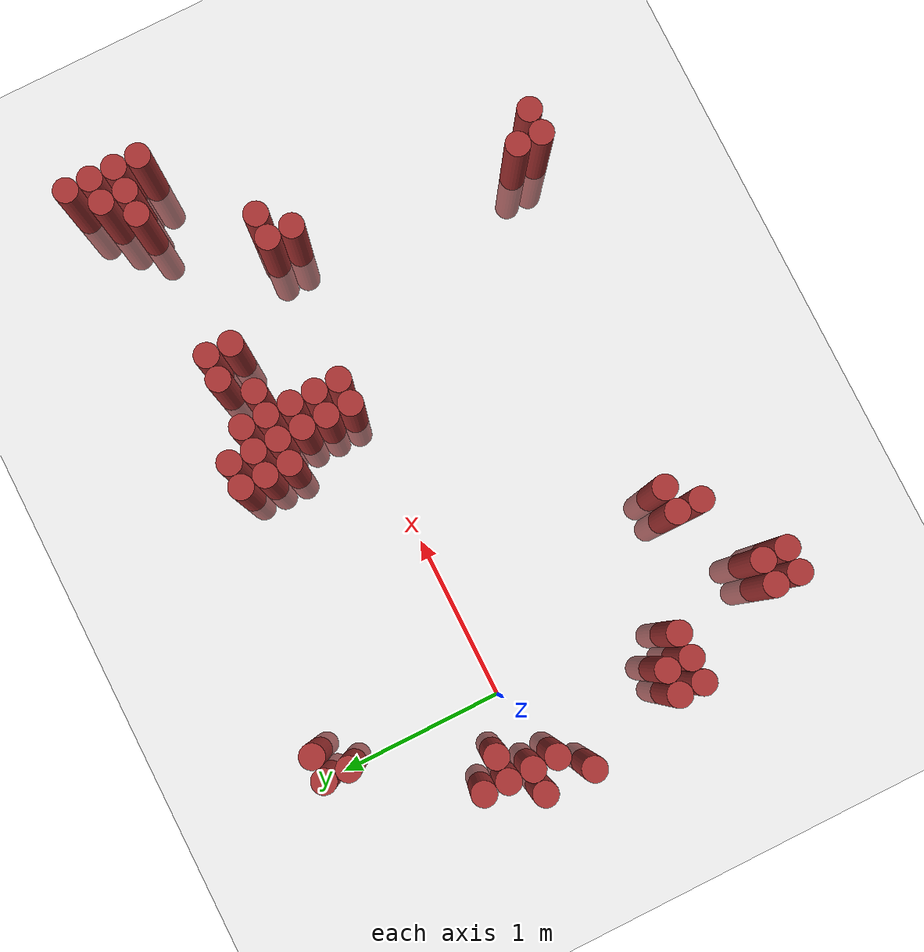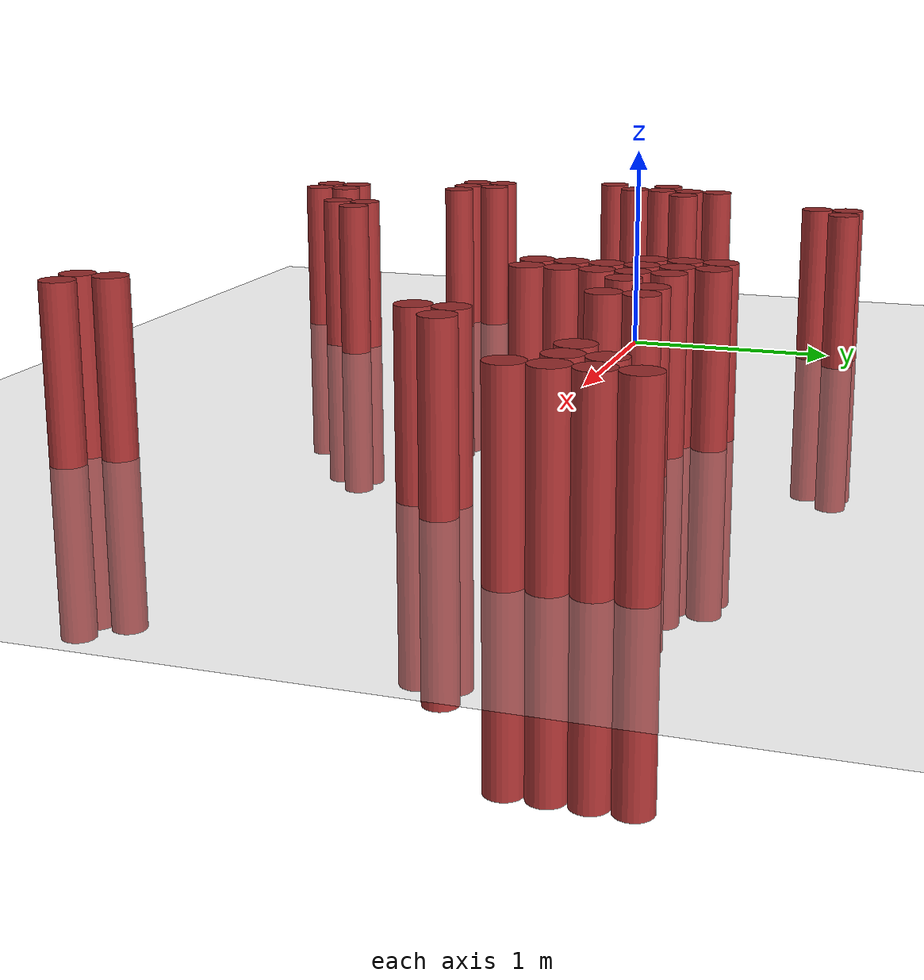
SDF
<sdf version="1.6">
 <world name="default">
  <model name="ground_plane">
   <static>1</static>
   <link name="link">
    <collision name="collision">
     <geometry><plane><normal>0 0 1</normal><size>100 100</size></plane></geometry>
     <surface><friction><ode><mu>100</mu><mu2>50</mu2></ode></friction></surface>
    </collision>
    <visual name="visual">
     <cast_shadows>0</cast_shadows>
     <geometry><plane><normal>0 0 1</normal><size>100 100</size></plane></geometry>
     <material>
      <script><uri>file://media/materials/scripts/gazebo.material</uri><name>Gazebo/Grey</name></script>
     </material>
    </visual>
   </link>
  </model>
  <model name="unit_cylinder_432">
   <static>1</static>
   <pose>-0.575000 -0.275000 0.000000 0.000000 0.000000 0.000000</pose>
   <link name="link">
    <inertial>
     <mass>1</mass>
     <inertia><ixx>0.145833</ixx><ixy>0</ixy><ixz>0</ixz><iyy>0.145833</iyy><iyz>0</iyz><izz>0.125</izz></inertia>
    </inertial>
    <collision name="collision">
     <geometry><cylinder><radius>0.075000</radius><length>1.5</length></cylinder></geometry>
    </collision>
    <visual name="visual">
     <geometry><cylinder><radius>0.075000</radius><length>1.5</length></cylinder></geometry>
     <material>
      <ambient>0.648000 0.192000 0.192000 1</ambient>
      <diffuse>0.648000 0.192000 0.192000 1</diffuse>
     </material>
     <material>
      <script><name>Gazebo/Grey</name><uri>file://media/materials/scripts/gazebo.material</uri></script>
     </material>
    </visual>
   </link>
  </model>
  <model name="unit_cylinder_433">
   <static>1</static>
   <pose>-0.575000 0.025000 0.000000 0.000000 0.000000 0.000000</pose>
   <link name="link">
    <inertial>
     <mass>1</mass>
     <inertia><ixx>0.145833</ixx><ixy>0</ixy><ixz>0</ixz><iyy>0.145833</iyy><iyz>0</iyz><izz>0.125</izz></inertia>
    </inertial>
    <collision name="collision">
     <geometry><cylinder><radius>0.075000</radius><length>1.5</length></cylinder></geometry>
    </collision>
    <visual name="visual">
     <geometry><cylinder><radius>0.075000</radius><length>1.5</length></cylinder></geometry>
     <material>
      <ambient>0.648000 0.192000 0.192000 1</ambient>
      <diffuse>0.648000 0.192000 0.192000 1</diffuse>
     </material>
     <material>
      <script><name>Gazebo/Grey</name><uri>file://media/materials/scripts/gazebo.material</uri></script>
     </material>
    </visual>
   </link>
  </model>
  <model name="unit_cylinder_440">
   <static>1</static>
   <pose>-0.425000 -1.025000 0.000000 0.000000 0.000000 0.000000</pose>
   <link name="link">
    <inertial>
     <mass>1</mass>
     <inertia><ixx>0.145833</ixx><ixy>0</ixy><ixz>0</ixz><iyy>0.145833</iyy><iyz>0</iyz><izz>0.125</izz></inertia>
    </inertial>
    <collision name="collision">
     <geometry><cylinder><radius>0.075000</radius><length>1.5</length></cylinder></geometry>
    </collision>
    <visual name="visual">
     <geometry><cylinder><radius>0.075000</radius><length>1.5</length></cylinder></geometry>
     <material>
      <ambient>0.648000 0.192000 0.192000 1</ambient>
      <diffuse>0.648000 0.192000 0.192000 1</diffuse>
     </material>
     <material>
      <script><name>Gazebo/Grey</name><uri>file://media/materials/scripts/gazebo.material</uri></script>
     </material>
    </visual>
   </link>
  </model>
  <model name="unit_cylinder_441">
   <static>1</static>
   <pose>-0.425000 -0.875000 0.000000 0.000000 0.000000 0.000000</pose>
   <link name="link">
    <inertial>
     <mass>1</mass>
     <inertia><ixx>0.145833</ixx><ixy>0</ixy><ixz>0</ixz><iyy>0.145833</iyy><iyz>0</iyz><izz>0.125</izz></inertia>
    </inertial>
    <collision name="collision">
     <geometry><cylinder><radius>0.075000</radius><length>1.5</length></cylinder></geometry>
    </collision>
    <visual name="visual">
     <geometry><cylinder><radius>0.075000</radius><length>1.5</length></cylinder></geometry>
     <material>
      <ambient>0.648000 0.192000 0.192000 1</ambient>
      <diffuse>0.648000 0.192000 0.192000 1</diffuse>
     </material>
     <material>
      <script><name>Gazebo/Grey</name><uri>file://media/materials/scripts/gazebo.material</uri></script>
     </material>
    </visual>
   </link>
  </model>
  <model name="unit_cylinder_442">
   <static>1</static>
   <pose>-0.425000 -0.125000 0.000000 0.000000 0.000000 0.000000</pose>
   <link name="link">
    <inertial>
     <mass>1</mass>
     <inertia><ixx>0.145833</ixx><ixy>0</ixy><ixz>0</ixz><iyy>0.145833</iyy><iyz>0</iyz><izz>0.125</izz></inertia>
    </inertial>
    <collision name="collision">
     <geometry><cylinder><radius>0.075000</radius><length>1.5</length></cylinder></geometry>
    </collision>
    <visual name="visual">
     <geometry><cylinder><radius>0.075000</radius><length>1.5</length></cylinder></geometry>
     <material>
      <ambient>0.648000 0.192000 0.192000 1</ambient>
      <diffuse>0.648000 0.192000 0.192000 1</diffuse>
     </material>
     <material>
      <script><name>Gazebo/Grey</name><uri>file://media/materials/scripts/gazebo.material</uri></script>
     </material>
    </visual>
   </link>
  </model>
  <model name="unit_cylinder_443">
   <static>1</static>
   <pose>-0.425000 0.025000 0.000000 0.000000 0.000000 0.000000</pose>
   <link name="link">
    <inertial>
     <mass>1</mass>
     <inertia><ixx>0.145833</ixx><ixy>0</ixy><ixz>0</ixz><iyy>0.145833</iyy><iyz>0</iyz><izz>0.125</izz></inertia>
    </inertial>
    <collision name="collision">
     <geometry><cylinder><radius>0.075000</radius><length>1.5</length></cylinder></geometry>
    </collision>
    <visual name="visual">
     <geometry><cylinder><radius>0.075000</radius><length>1.5</length></cylinder></geometry>
     <material>
      <ambient>0.648000 0.192000 0.192000 1</ambient>
      <diffuse>0.648000 0.192000 0.192000 1</diffuse>
     </material>
     <material>
      <script><name>Gazebo/Grey</name><uri>file://media/materials/scripts/gazebo.material</uri></script>
     </material>
    </visual>
   </link>
  </model>
  <model name="unit_cylinder_444">
   <static>1</static>
   <pose>-0.425000 0.175000 0.000000 0.000000 0.000000 0.000000</pose>
   <link name="link">
    <inertial>
     <mass>1</mass>
     <inertia><ixx>0.145833</ixx><ixy>0</ixy><ixz>0</ixz><iyy>0.145833</iyy><iyz>0</iyz><izz>0.125</izz></inertia>
    </inertial>
    <collision name="collision">
     <geometry><cylinder><radius>0.075000</radius><length>1.5</length></cylinder></geometry>
    </collision>
    <visual name="visual">
     <geometry><cylinder><radius>0.075000</radius><length>1.5</length></cylinder></geometry>
     <material>
      <ambient>0.648000 0.192000 0.192000 1</ambient>
      <diffuse>0.648000 0.192000 0.192000 1</diffuse>
     </material>
     <material>
      <script><name>Gazebo/Grey</name><uri>file://media/materials/scripts/gazebo.material</uri></script>
     </material>
    </visual>
   </link>
  </model>
  <model name="unit_cylinder_445">
   <static>1</static>
   <pose>-0.425000 0.325000 0.000000 0.000000 0.000000 0.000000</pose>
   <link name="link">
    <inertial>
     <mass>1</mass>
     <inertia><ixx>0.145833</ixx><ixy>0</ixy><ixz>0</ixz><iyy>0.145833</iyy><iyz>0</iyz><izz>0.125</izz></inertia>
    </inertial>
    <collision name="collision">
     <geometry><cylinder><radius>0.075000</radius><length>1.5</length></cylinder></geometry>
    </collision>
    <visual name="visual">
     <geometry><cylinder><radius>0.075000</radius><length>1.5</length></cylinder></geometry>
     <material>
      <ambient>0.648000 0.192000 0.192000 1</ambient>
      <diffuse>0.648000 0.192000 0.192000 1</diffuse>
     </material>
     <material>
      <script><name>Gazebo/Grey</name><uri>file://media/materials/scripts/gazebo.material</uri></script>
     </material>
    </visual>
   </link>
  </model>
  <model name="unit_cylinder_457">
   <static>1</static>
   <pose>-0.275000 -1.025000 0.000000 0.000000 0.000000 0.000000</pose>
   <link name="link">
    <inertial>
     <mass>1</mass>
     <inertia><ixx>0.145833</ixx><ixy>0</ixy><ixz>0</ixz><iyy>0.145833</iyy><iyz>0</iyz><izz>0.125</izz></inertia>
    </inertial>
    <collision name="collision">
     <geometry><cylinder><radius>0.075000</radius><length>1.5</length></cylinder></geometry>
    </collision>
    <visual name="visual">
     <geometry><cylinder><radius>0.075000</radius><length>1.5</length></cylinder></geometry>
     <material>
      <ambient>0.648000 0.192000 0.192000 1</ambient>
      <diffuse>0.648000 0.192000 0.192000 1</diffuse>
     </material>
     <material>
      <script><name>Gazebo/Grey</name><uri>file://media/materials/scripts/gazebo.material</uri></script>
     </material>
    </visual>
   </link>
  </model>
  <model name="unit_cylinder_458">
   <static>1</static>
   <pose>-0.275000 -0.875000 0.000000 0.000000 0.000000 0.000000</pose>
   <link name="link">
    <inertial>
     <mass>1</mass>
     <inertia><ixx>0.145833</ixx><ixy>0</ixy><ixz>0</ixz><iyy>0.145833</iyy><iyz>0</iyz><izz>0.125</izz></inertia>
    </inertial>
    <collision name="collision">
     <geometry><cylinder><radius>0.075000</radius><length>1.5</length></cylinder></geometry>
    </collision>
    <visual name="visual">
     <geometry><cylinder><radius>0.075000</radius><length>1.5</length></cylinder></geometry>
     <material>
      <ambient>0.648000 0.192000 0.192000 1</ambient>
      <diffuse>0.648000 0.192000 0.192000 1</diffuse>
     </material>
     <material>
      <script><name>Gazebo/Grey</name><uri>file://media/materials/scripts/gazebo.material</uri></script>
     </material>
    </visual>
   </link>
  </model>
  <model name="unit_cylinder_459">
   <static>1</static>
   <pose>-0.275000 0.175000 0.000000 0.000000 0.000000 0.000000</pose>
   <link name="link">
    <inertial>
     <mass>1</mass>
     <inertia><ixx>0.145833</ixx><ixy>0</ixy><ixz>0</ixz><iyy>0.145833</iyy><iyz>0</iyz><izz>0.125</izz></inertia>
    </inertial>
    <collision name="collision">
     <geometry><cylinder><radius>0.075000</radius><length>1.5</length></cylinder></geometry>
    </collision>
    <visual name="visual">
     <geometry><cylinder><radius>0.075000</radius><length>1.5</length></cylinder></geometry>
     <material>
      <ambient>0.648000 0.192000 0.192000 1</ambient>
      <diffuse>0.648000 0.192000 0.192000 1</diffuse>
     </material>
     <material>
      <script><name>Gazebo/Grey</name><uri>file://media/materials/scripts/gazebo.material</uri></script>
     </material>
    </visual>
   </link>
  </model>
  <model name="unit_cylinder_474">
   <static>1</static>
   <pose>-0.125000 -1.775000 0.000000 0.000000 0.000000 0.000000</pose>
   <link name="link">
    <inertial>
     <mass>1</mass>
     <inertia><ixx>0.145833</ixx><ixy>0</ixy><ixz>0</ixz><iyy>0.145833</iyy><iyz>0</iyz><izz>0.125</izz></inertia>
    </inertial>
    <collision name="collision">
     <geometry><cylinder><radius>0.075000</radius><length>1.5</length></cylinder></geometry>
    </collision>
    <visual name="visual">
     <geometry><cylinder><radius>0.075000</radius><length>1.5</length></cylinder></geometry>
     <material>
      <ambient>0.648000 0.192000 0.192000 1</ambient>
      <diffuse>0.648000 0.192000 0.192000 1</diffuse>
     </material>
     <material>
      <script><name>Gazebo/Grey</name><uri>file://media/materials/scripts/gazebo.material</uri></script>
     </material>
    </visual>
   </link>
  </model>
  <model name="unit_cylinder_475">
   <static>1</static>
   <pose>-0.125000 -1.625000 0.000000 0.000000 0.000000 0.000000</pose>
   <link name="link">
    <inertial>
     <mass>1</mass>
     <inertia><ixx>0.145833</ixx><ixy>0</ixy><ixz>0</ixz><iyy>0.145833</iyy><iyz>0</iyz><izz>0.125</izz></inertia>
    </inertial>
    <collision name="collision">
     <geometry><cylinder><radius>0.075000</radius><length>1.5</length></cylinder></geometry>
    </collision>
    <visual name="visual">
     <geometry><cylinder><radius>0.075000</radius><length>1.5</length></cylinder></geometry>
     <material>
      <ambient>0.648000 0.192000 0.192000 1</ambient>
      <diffuse>0.648000 0.192000 0.192000 1</diffuse>
     </material>
     <material>
      <script><name>Gazebo/Grey</name><uri>file://media/materials/scripts/gazebo.material</uri></script>
     </material>
    </visual>
   </link>
  </model>
  <model name="unit_cylinder_476">
   <static>1</static>
   <pose>-0.125000 -1.025000 0.000000 0.000000 0.000000 0.000000</pose>
   <link name="link">
    <inertial>
     <mass>1</mass>
     <inertia><ixx>0.145833</ixx><ixy>0</ixy><ixz>0</ixz><iyy>0.145833</iyy><iyz>0</iyz><izz>0.125</izz></inertia>
    </inertial>
    <collision name="collision">
     <geometry><cylinder><radius>0.075000</radius><length>1.5</length></cylinder></geometry>
    </collision>
    <visual name="visual">
     <geometry><cylinder><radius>0.075000</radius><length>1.5</length></cylinder></geometry>
     <material>
      <ambient>0.648000 0.192000 0.192000 1</ambient>
      <diffuse>0.648000 0.192000 0.192000 1</diffuse>
     </material>
     <material>
      <script><name>Gazebo/Grey</name><uri>file://media/materials/scripts/gazebo.material</uri></script>
     </material>
    </visual>
   </link>
  </model>
  <model name="unit_cylinder_482">
   <static>1</static>
   <pose>0.025000 -1.775000 0.000000 0.000000 0.000000 0.000000</pose>
   <link name="link">
    <inertial>
     <mass>1</mass>
     <inertia><ixx>0.145833</ixx><ixy>0</ixy><ixz>0</ixz><iyy>0.145833</iyy><iyz>0</iyz><izz>0.125</izz></inertia>
    </inertial>
    <collision name="collision">
     <geometry><cylinder><radius>0.075000</radius><length>1.5</length></cylinder></geometry>
    </collision>
    <visual name="visual">
     <geometry><cylinder><radius>0.075000</radius><length>1.5</length></cylinder></geometry>
     <material>
      <ambient>0.648000 0.192000 0.192000 1</ambient>
      <diffuse>0.648000 0.192000 0.192000 1</diffuse>
     </material>
     <material>
      <script><name>Gazebo/Grey</name><uri>file://media/materials/scripts/gazebo.material</uri></script>
     </material>
    </visual>
   </link>
  </model>
  <model name="unit_cylinder_483">
   <static>1</static>
   <pose>0.025000 -1.625000 0.000000 0.000000 0.000000 0.000000</pose>
   <link name="link">
    <inertial>
     <mass>1</mass>
     <inertia><ixx>0.145833</ixx><ixy>0</ixy><ixz>0</ixz><iyy>0.145833</iyy><iyz>0</iyz><izz>0.125</izz></inertia>
    </inertial>
    <collision name="collision">
     <geometry><cylinder><radius>0.075000</radius><length>1.5</length></cylinder></geometry>
    </collision>
    <visual name="visual">
     <geometry><cylinder><radius>0.075000</radius><length>1.5</length></cylinder></geometry>
     <material>
      <ambient>0.648000 0.192000 0.192000 1</ambient>
      <diffuse>0.648000 0.192000 0.192000 1</diffuse>
     </material>
     <material>
      <script><name>Gazebo/Grey</name><uri>file://media/materials/scripts/gazebo.material</uri></script>
     </material>
    </visual>
   </link>
  </model>
  <model name="unit_cylinder_484">
   <static>1</static>
   <pose>0.025000 0.925000 0.000000 0.000000 0.000000 0.000000</pose>
   <link name="link">
    <inertial>
     <mass>1</mass>
     <inertia><ixx>0.145833</ixx><ixy>0</ixy><ixz>0</ixz><iyy>0.145833</iyy><iyz>0</iyz><izz>0.125</izz></inertia>
    </inertial>
    <collision name="collision">
     <geometry><cylinder><radius>0.075000</radius><length>1.5</length></cylinder></geometry>
    </collision>
    <visual name="visual">
     <geometry><cylinder><radius>0.075000</radius><length>1.5</length></cylinder></geometry>
     <material>
      <ambient>0.648000 0.192000 0.192000 1</ambient>
      <diffuse>0.648000 0.192000 0.192000 1</diffuse>
     </material>
     <material>
      <script><name>Gazebo/Grey</name><uri>file://media/materials/scripts/gazebo.material</uri></script>
     </material>
    </visual>
   </link>
  </model>
  <model name="unit_cylinder_485">
   <static>1</static>
   <pose>0.025000 1.075000 0.000000 0.000000 0.000000 0.000000</pose>
   <link name="link">
    <inertial>
     <mass>1</mass>
     <inertia><ixx>0.145833</ixx><ixy>0</ixy><ixz>0</ixz><iyy>0.145833</iyy><iyz>0</iyz><izz>0.125</izz></inertia>
    </inertial>
    <collision name="collision">
     <geometry><cylinder><radius>0.075000</radius><length>1.5</length></cylinder></geometry>
    </collision>
    <visual name="visual">
     <geometry><cylinder><radius>0.075000</radius><length>1.5</length></cylinder></geometry>
     <material>
      <ambient>0.648000 0.192000 0.192000 1</ambient>
      <diffuse>0.648000 0.192000 0.192000 1</diffuse>
     </material>
     <material>
      <script><name>Gazebo/Grey</name><uri>file://media/materials/scripts/gazebo.material</uri></script>
     </material>
    </visual>
   </link>
  </model>
  <model name="unit_cylinder_492">
   <static>1</static>
   <pose>0.175000 1.075000 0.000000 0.000000 0.000000 0.000000</pose>
   <link name="link">
    <inertial>
     <mass>1</mass>
     <inertia><ixx>0.145833</ixx><ixy>0</ixy><ixz>0</ixz><iyy>0.145833</iyy><iyz>0</iyz><izz>0.125</izz></inertia>
    </inertial>
    <collision name="collision">
     <geometry><cylinder><radius>0.075000</radius><length>1.5</length></cylinder></geometry>
    </collision>
    <visual name="visual">
     <geometry><cylinder><radius>0.075000</radius><length>1.5</length></cylinder></geometry>
     <material>
      <ambient>0.648000 0.192000 0.192000 1</ambient>
      <diffuse>0.648000 0.192000 0.192000 1</diffuse>
     </material>
     <material>
      <script><name>Gazebo/Grey</name><uri>file://media/materials/scripts/gazebo.material</uri></script>
     </material>
    </visual>
   </link>
  </model>
  <model name="unit_cylinder_511">
   <static>1</static>
   <pose>0.475000 -1.475000 0.000000 0.000000 0.000000 0.000000</pose>
   <link name="link">
    <inertial>
     <mass>1</mass>
     <inertia><ixx>0.145833</ixx><ixy>0</ixy><ixz>0</ixz><iyy>0.145833</iyy><iyz>0</iyz><izz>0.125</izz></inertia>
    </inertial>
    <collision name="collision">
     <geometry><cylinder><radius>0.075000</radius><length>1.5</length></cylinder></geometry>
    </collision>
    <visual name="visual">
     <geometry><cylinder><radius>0.075000</radius><length>1.5</length></cylinder></geometry>
     <material>
      <ambient>0.648000 0.192000 0.192000 1</ambient>
      <diffuse>0.648000 0.192000 0.192000 1</diffuse>
     </material>
     <material>
      <script><name>Gazebo/Grey</name><uri>file://media/materials/scripts/gazebo.material</uri></script>
     </material>
    </visual>
   </link>
  </model>
  <model name="unit_cylinder_512">
   <static>1</static>
   <pose>0.475000 -1.325000 0.000000 0.000000 0.000000 0.000000</pose>
   <link name="link">
    <inertial>
     <mass>1</mass>
     <inertia><ixx>0.145833</ixx><ixy>0</ixy><ixz>0</ixz><iyy>0.145833</iyy><iyz>0</iyz><izz>0.125</izz></inertia>
    </inertial>
    <collision name="collision">
     <geometry><cylinder><radius>0.075000</radius><length>1.5</length></cylinder></geometry>
    </collision>
    <visual name="visual">
     <geometry><cylinder><radius>0.075000</radius><length>1.5</length></cylinder></geometry>
     <material>
      <ambient>0.648000 0.192000 0.192000 1</ambient>
      <diffuse>0.648000 0.192000 0.192000 1</diffuse>
     </material>
     <material>
      <script><name>Gazebo/Grey</name><uri>file://media/materials/scripts/gazebo.material</uri></script>
     </material>
    </visual>
   </link>
  </model>
  <model name="unit_cylinder_523">
   <static>1</static>
   <pose>0.625000 -1.325000 0.000000 0.000000 0.000000 0.000000</pose>
   <link name="link">
    <inertial>
     <mass>1</mass>
     <inertia><ixx>0.145833</ixx><ixy>0</ixy><ixz>0</ixz><iyy>0.145833</iyy><iyz>0</iyz><izz>0.125</izz></inertia>
    </inertial>
    <collision name="collision">
     <geometry><cylinder><radius>0.075000</radius><length>1.5</length></cylinder></geometry>
    </collision>
    <visual name="visual">
     <geometry><cylinder><radius>0.075000</radius><length>1.5</length></cylinder></geometry>
     <material>
      <ambient>0.648000 0.192000 0.192000 1</ambient>
      <diffuse>0.648000 0.192000 0.192000 1</diffuse>
     </material>
     <material>
      <script><name>Gazebo/Grey</name><uri>file://media/materials/scripts/gazebo.material</uri></script>
     </material>
    </visual>
   </link>
  </model>
  <model name="unit_cylinder_536">
   <static>1</static>
   <pose>1.675000 0.475000 0.000000 0.000000 0.000000 0.000000</pose>
   <link name="link">
    <inertial>
     <mass>1</mass>
     <inertia><ixx>0.145833</ixx><ixy>0</ixy><ixz>0</ixz><iyy>0.145833</iyy><iyz>0</iyz><izz>0.125</izz></inertia>
    </inertial>
    <collision name="collision">
     <geometry><cylinder><radius>0.075000</radius><length>1.5</length></cylinder></geometry>
    </collision>
    <visual name="visual">
     <geometry><cylinder><radius>0.075000</radius><length>1.5</length></cylinder></geometry>
     <material>
      <ambient>0.648000 0.192000 0.192000 1</ambient>
      <diffuse>0.648000 0.192000 0.192000 1</diffuse>
     </material>
     <material>
      <script><name>Gazebo/Grey</name><uri>file://media/materials/scripts/gazebo.material</uri></script>
     </material>
    </visual>
   </link>
  </model>
  <model name="unit_cylinder_537">
   <static>1</static>
   <pose>1.675000 0.625000 0.000000 0.000000 0.000000 0.000000</pose>
   <link name="link">
    <inertial>
     <mass>1</mass>
     <inertia><ixx>0.145833</ixx><ixy>0</ixy><ixz>0</ixz><iyy>0.145833</iyy><iyz>0</iyz><izz>0.125</izz></inertia>
    </inertial>
    <collision name="collision">
     <geometry><cylinder><radius>0.075000</radius><length>1.5</length></cylinder></geometry>
    </collision>
    <visual name="visual">
     <geometry><cylinder><radius>0.075000</radius><length>1.5</length></cylinder></geometry>
     <material>
      <ambient>0.648000 0.192000 0.192000 1</ambient>
      <diffuse>0.648000 0.192000 0.192000 1</diffuse>
     </material>
     <material>
      <script><name>Gazebo/Grey</name><uri>file://media/materials/scripts/gazebo.material</uri></script>
     </material>
    </visual>
   </link>
  </model>
  <model name="unit_cylinder_538">
   <static>1</static>
   <pose>1.675000 0.775000 0.000000 0.000000 0.000000 0.000000</pose>
   <link name="link">
    <inertial>
     <mass>1</mass>
     <inertia><ixx>0.145833</ixx><ixy>0</ixy><ixz>0</ixz><iyy>0.145833</iyy><iyz>0</iyz><izz>0.125</izz></inertia>
    </inertial>
    <collision name="collision">
     <geometry><cylinder><radius>0.075000</radius><length>1.5</length></cylinder></geometry>
    </collision>
    <visual name="visual">
     <geometry><cylinder><radius>0.075000</radius><length>1.5</length></cylinder></geometry>
     <material>
      <ambient>0.648000 0.192000 0.192000 1</ambient>
      <diffuse>0.648000 0.192000 0.192000 1</diffuse>
     </material>
     <material>
      <script><name>Gazebo/Grey</name><uri>file://media/materials/scripts/gazebo.material</uri></script>
     </material>
    </visual>
   </link>
  </model>
  <model name="unit_cylinder_539">
   <static>1</static>
   <pose>1.825000 0.025000 0.000000 0.000000 0.000000 0.000000</pose>
   <link name="link">
    <inertial>
     <mass>1</mass>
     <inertia><ixx>0.145833</ixx><ixy>0</ixy><ixz>0</ixz><iyy>0.145833</iyy><iyz>0</iyz><izz>0.125</izz></inertia>
    </inertial>
    <collision name="collision">
     <geometry><cylinder><radius>0.075000</radius><length>1.5</length></cylinder></geometry>
    </collision>
    <visual name="visual">
     <geometry><cylinder><radius>0.075000</radius><length>1.5</length></cylinder></geometry>
     <material>
      <ambient>0.648000 0.192000 0.192000 1</ambient>
      <diffuse>0.648000 0.192000 0.192000 1</diffuse>
     </material>
     <material>
      <script><name>Gazebo/Grey</name><uri>file://media/materials/scripts/gazebo.material</uri></script>
     </material>
    </visual>
   </link>
  </model>
  <model name="unit_cylinder_540">
   <static>1</static>
   <pose>1.825000 0.175000 0.000000 0.000000 0.000000 0.000000</pose>
   <link name="link">
    <inertial>
     <mass>1</mass>
     <inertia><ixx>0.145833</ixx><ixy>0</ixy><ixz>0</ixz><iyy>0.145833</iyy><iyz>0</iyz><izz>0.125</izz></inertia>
    </inertial>
    <collision name="collision">
     <geometry><cylinder><radius>0.075000</radius><length>1.5</length></cylinder></geometry>
    </collision>
    <visual name="visual">
     <geometry><cylinder><radius>0.075000</radius><length>1.5</length></cylinder></geometry>
     <material>
      <ambient>0.648000 0.192000 0.192000 1</ambient>
      <diffuse>0.648000 0.192000 0.192000 1</diffuse>
     </material>
     <material>
      <script><name>Gazebo/Grey</name><uri>file://media/materials/scripts/gazebo.material</uri></script>
     </material>
    </visual>
   </link>
  </model>
  <model name="unit_cylinder_541">
   <static>1</static>
   <pose>1.825000 0.325000 0.000000 0.000000 0.000000 0.000000</pose>
   <link name="link">
    <inertial>
     <mass>1</mass>
     <inertia><ixx>0.145833</ixx><ixy>0</ixy><ixz>0</ixz><iyy>0.145833</iyy><iyz>0</iyz><izz>0.125</izz></inertia>
    </inertial>
    <collision name="collision">
     <geometry><cylinder><radius>0.075000</radius><length>1.5</length></cylinder></geometry>
    </collision>
    <visual name="visual">
     <geometry><cylinder><radius>0.075000</radius><length>1.5</length></cylinder></geometry>
     <material>
      <ambient>0.648000 0.192000 0.192000 1</ambient>
      <diffuse>0.648000 0.192000 0.192000 1</diffuse>
     </material>
     <material>
      <script><name>Gazebo/Grey</name><uri>file://media/materials/scripts/gazebo.material</uri></script>
     </material>
    </visual>
   </link>
  </model>
  <model name="unit_cylinder_542">
   <static>1</static>
   <pose>1.825000 0.475000 0.000000 0.000000 0.000000 0.000000</pose>
   <link name="link">
    <inertial>
     <mass>1</mass>
     <inertia><ixx>0.145833</ixx><ixy>0</ixy><ixz>0</ixz><iyy>0.145833</iyy><iyz>0</iyz><izz>0.125</izz></inertia>
    </inertial>
    <collision name="collision">
     <geometry><cylinder><radius>0.075000</radius><length>1.5</length></cylinder></geometry>
    </collision>
    <visual name="visual">
     <geometry><cylinder><radius>0.075000</radius><length>1.5</length></cylinder></geometry>
     <material>
      <ambient>0.648000 0.192000 0.192000 1</ambient>
      <diffuse>0.648000 0.192000 0.192000 1</diffuse>
     </material>
     <material>
      <script><name>Gazebo/Grey</name><uri>file://media/materials/scripts/gazebo.material</uri></script>
     </material>
    </visual>
   </link>
  </model>
  <model name="unit_cylinder_543">
   <static>1</static>
   <pose>1.825000 0.625000 0.000000 0.000000 0.000000 0.000000</pose>
   <link name="link">
    <inertial>
     <mass>1</mass>
     <inertia><ixx>0.145833</ixx><ixy>0</ixy><ixz>0</ixz><iyy>0.145833</iyy><iyz>0</iyz><izz>0.125</izz></inertia>
    </inertial>
    <collision name="collision">
     <geometry><cylinder><radius>0.075000</radius><length>1.5</length></cylinder></geometry>
    </collision>
    <visual name="visual">
     <geometry><cylinder><radius>0.075000</radius><length>1.5</length></cylinder></geometry>
     <material>
      <ambient>0.648000 0.192000 0.192000 1</ambient>
      <diffuse>0.648000 0.192000 0.192000 1</diffuse>
     </material>
     <material>
      <script><name>Gazebo/Grey</name><uri>file://media/materials/scripts/gazebo.material</uri></script>
     </material>
    </visual>
   </link>
  </model>
  <model name="unit_cylinder_544">
   <static>1</static>
   <pose>1.825000 0.775000 0.000000 0.000000 0.000000 0.000000</pose>
   <link name="link">
    <inertial>
     <mass>1</mass>
     <inertia><ixx>0.145833</ixx><ixy>0</ixy><ixz>0</ixz><iyy>0.145833</iyy><iyz>0</iyz><izz>0.125</izz></inertia>
    </inertial>
    <collision name="collision">
     <geometry><cylinder><radius>0.075000</radius><length>1.5</length></cylinder></geometry>
    </collision>
    <visual name="visual">
     <geometry><cylinder><radius>0.075000</radius><length>1.5</length></cylinder></geometry>
     <material>
      <ambient>0.648000 0.192000 0.192000 1</ambient>
      <diffuse>0.648000 0.192000 0.192000 1</diffuse>
     </material>
     <material>
      <script><name>Gazebo/Grey</name><uri>file://media/materials/scripts/gazebo.material</uri></script>
     </material>
    </visual>
   </link>
  </model>
  <model name="unit_cylinder_545">
   <static>1</static>
   <pose>1.975000 0.025000 0.000000 0.000000 0.000000 0.000000</pose>
   <link name="link">
    <inertial>
     <mass>1</mass>
     <inertia><ixx>0.145833</ixx><ixy>0</ixy><ixz>0</ixz><iyy>0.145833</iyy><iyz>0</iyz><izz>0.125</izz></inertia>
    </inertial>
    <collision name="collision">
     <geometry><cylinder><radius>0.075000</radius><length>1.5</length></cylinder></geometry>
    </collision>
    <visual name="visual">
     <geometry><cylinder><radius>0.075000</radius><length>1.5</length></cylinder></geometry>
     <material>
      <ambient>0.648000 0.192000 0.192000 1</ambient>
      <diffuse>0.648000 0.192000 0.192000 1</diffuse>
     </material>
     <material>
      <script><name>Gazebo/Grey</name><uri>file://media/materials/scripts/gazebo.material</uri></script>
     </material>
    </visual>
   </link>
  </model>
  <model name="unit_cylinder_546">
   <static>1</static>
   <pose>1.975000 0.175000 0.000000 0.000000 0.000000 0.000000</pose>
   <link name="link">
    <inertial>
     <mass>1</mass>
     <inertia><ixx>0.145833</ixx><ixy>0</ixy><ixz>0</ixz><iyy>0.145833</iyy><iyz>0</iyz><izz>0.125</izz></inertia>
    </inertial>
    <collision name="collision">
     <geometry><cylinder><radius>0.075000</radius><length>1.5</length></cylinder></geometry>
    </collision>
    <visual name="visual">
     <geometry><cylinder><radius>0.075000</radius><length>1.5</length></cylinder></geometry>
     <material>
      <ambient>0.648000 0.192000 0.192000 1</ambient>
      <diffuse>0.648000 0.192000 0.192000 1</diffuse>
     </material>
     <material>
      <script><name>Gazebo/Grey</name><uri>file://media/materials/scripts/gazebo.material</uri></script>
     </material>
    </visual>
   </link>
  </model>
  <model name="unit_cylinder_547">
   <static>1</static>
   <pose>1.975000 0.325000 0.000000 0.000000 0.000000 0.000000</pose>
   <link name="link">
    <inertial>
     <mass>1</mass>
     <inertia><ixx>0.145833</ixx><ixy>0</ixy><ixz>0</ixz><iyy>0.145833</iyy><iyz>0</iyz><izz>0.125</izz></inertia>
    </inertial>
    <collision name="collision">
     <geometry><cylinder><radius>0.075000</radius><length>1.5</length></cylinder></geometry>
    </collision>
    <visual name="visual">
     <geometry><cylinder><radius>0.075000</radius><length>1.5</length></cylinder></geometry>
     <material>
      <ambient>0.648000 0.192000 0.192000 1</ambient>
      <diffuse>0.648000 0.192000 0.192000 1</diffuse>
     </material>
     <material>
      <script><name>Gazebo/Grey</name><uri>file://media/materials/scripts/gazebo.material</uri></script>
     </material>
    </visual>
   </link>
  </model>
  <model name="unit_cylinder_548">
   <static>1</static>
   <pose>1.975000 0.475000 0.000000 0.000000 0.000000 0.000000</pose>
   <link name="link">
    <inertial>
     <mass>1</mass>
     <inertia><ixx>0.145833</ixx><ixy>0</ixy><ixz>0</ixz><iyy>0.145833</iyy><iyz>0</iyz><izz>0.125</izz></inertia>
    </inertial>
    <collision name="collision">
     <geometry><cylinder><radius>0.075000</radius><length>1.5</length></cylinder></geometry>
    </collision>
    <visual name="visual">
     <geometry><cylinder><radius>0.075000</radius><length>1.5</length></cylinder></geometry>
     <material>
      <ambient>0.648000 0.192000 0.192000 1</ambient>
      <diffuse>0.648000 0.192000 0.192000 1</diffuse>
     </material>
     <material>
      <script><name>Gazebo/Grey</name><uri>file://media/materials/scripts/gazebo.material</uri></script>
     </material>
    </visual>
   </link>
  </model>
  <model name="unit_cylinder_549">
   <static>1</static>
   <pose>1.975000 0.625000 0.000000 0.000000 0.000000 0.000000</pose>
   <link name="link">
    <inertial>
     <mass>1</mass>
     <inertia><ixx>0.145833</ixx><ixy>0</ixy><ixz>0</ixz><iyy>0.145833</iyy><iyz>0</iyz><izz>0.125</izz></inertia>
    </inertial>
    <collision name="collision">
     <geometry><cylinder><radius>0.075000</radius><length>1.5</length></cylinder></geometry>
    </collision>
    <visual name="visual">
     <geometry><cylinder><radius>0.075000</radius><length>1.5</length></cylinder></geometry>
     <material>
      <ambient>0.648000 0.192000 0.192000 1</ambient>
      <diffuse>0.648000 0.192000 0.192000 1</diffuse>
     </material>
     <material>
      <script><name>Gazebo/Grey</name><uri>file://media/materials/scripts/gazebo.material</uri></script>
     </material>
    </visual>
   </link>
  </model>
  <model name="unit_cylinder_552">
   <static>1</static>
   <pose>2.125000 0.475000 0.000000 0.000000 0.000000 0.000000</pose>
   <link name="link">
    <inertial>
     <mass>1</mass>
     <inertia><ixx>0.145833</ixx><ixy>0</ixy><ixz>0</ixz><iyy>0.145833</iyy><iyz>0</iyz><izz>0.125</izz></inertia>
    </inertial>
    <collision name="collision">
     <geometry><cylinder><radius>0.075000</radius><length>1.5</length></cylinder></geometry>
    </collision>
    <visual name="visual">
     <geometry><cylinder><radius>0.075000</radius><length>1.5</length></cylinder></geometry>
     <material>
      <ambient>0.648000 0.192000 0.192000 1</ambient>
      <diffuse>0.648000 0.192000 0.192000 1</diffuse>
     </material>
     <material>
      <script><name>Gazebo/Grey</name><uri>file://media/materials/scripts/gazebo.material</uri></script>
     </material>
    </visual>
   </link>
  </model>
  <model name="unit_cylinder_557">
   <static>1</static>
   <pose>2.275000 0.625000 0.000000 0.000000 0.000000 0.000000</pose>
   <link name="link">
    <inertial>
     <mass>1</mass>
     <inertia><ixx>0.145833</ixx><ixy>0</ixy><ixz>0</ixz><iyy>0.145833</iyy><iyz>0</iyz><izz>0.125</izz></inertia>
    </inertial>
    <collision name="collision">
     <geometry><cylinder><radius>0.075000</radius><length>1.5</length></cylinder></geometry>
    </collision>
    <visual name="visual">
     <geometry><cylinder><radius>0.075000</radius><length>1.5</length></cylinder></geometry>
     <material>
      <ambient>0.648000 0.192000 0.192000 1</ambient>
      <diffuse>0.648000 0.192000 0.192000 1</diffuse>
     </material>
     <material>
      <script><name>Gazebo/Grey</name><uri>file://media/materials/scripts/gazebo.material</uri></script>
     </material>
    </visual>
   </link>
  </model>
  <model name="unit_cylinder_563">
   <static>1</static>
   <pose>2.425000 0.475000 0.000000 0.000000 0.000000 0.000000</pose>
   <link name="link">
    <inertial>
     <mass>1</mass>
     <inertia><ixx>0.145833</ixx><ixy>0</ixy><ixz>0</ixz><iyy>0.145833</iyy><iyz>0</iyz><izz>0.125</izz></inertia>
    </inertial>
    <collision name="collision">
     <geometry><cylinder><radius>0.075000</radius><length>1.5</length></cylinder></geometry>
    </collision>
    <visual name="visual">
     <geometry><cylinder><radius>0.075000</radius><length>1.5</length></cylinder></geometry>
     <material>
      <ambient>0.648000 0.192000 0.192000 1</ambient>
      <diffuse>0.648000 0.192000 0.192000 1</diffuse>
     </material>
     <material>
      <script><name>Gazebo/Grey</name><uri>file://media/materials/scripts/gazebo.material</uri></script>
     </material>
    </visual>
   </link>
  </model>
  <model name="unit_cylinder_564">
   <static>1</static>
   <pose>2.425000 0.625000 0.000000 0.000000 0.000000 0.000000</pose>
   <link name="link">
    <inertial>
     <mass>1</mass>
     <inertia><ixx>0.145833</ixx><ixy>0</ixy><ixz>0</ixz><iyy>0.145833</iyy><iyz>0</iyz><izz>0.125</izz></inertia>
    </inertial>
    <collision name="collision">
     <geometry><cylinder><radius>0.075000</radius><length>1.5</length></cylinder></geometry>
    </collision>
    <visual name="visual">
     <geometry><cylinder><radius>0.075000</radius><length>1.5</length></cylinder></geometry>
     <material>
      <ambient>0.648000 0.192000 0.192000 1</ambient>
      <diffuse>0.648000 0.192000 0.192000 1</diffuse>
     </material>
     <material>
      <script><name>Gazebo/Grey</name><uri>file://media/materials/scripts/gazebo.material</uri></script>
     </material>
    </visual>
   </link>
  </model>
  <model name="unit_cylinder_576">
   <static>1</static>
   <pose>2.725000 -1.625000 0.000000 0.000000 0.000000 0.000000</pose>
   <link name="link">
    <inertial>
     <mass>1</mass>
     <inertia><ixx>0.145833</ixx><ixy>0</ixy><ixz>0</ixz><iyy>0.145833</iyy><iyz>0</iyz><izz>0.125</izz></inertia>
    </inertial>
    <collision name="collision">
     <geometry><cylinder><radius>0.075000</radius><length>1.5</length></cylinder></geometry>
    </collision>
    <visual name="visual">
     <geometry><cylinder><radius>0.075000</radius><length>1.5</length></cylinder></geometry>
     <material>
      <ambient>0.648000 0.192000 0.192000 1</ambient>
      <diffuse>0.648000 0.192000 0.192000 1</diffuse>
     </material>
     <material>
      <script><name>Gazebo/Grey</name><uri>file://media/materials/scripts/gazebo.material</uri></script>
     </material>
    </visual>
   </link>
  </model>
  <model name="unit_cylinder_577">
   <static>1</static>
   <pose>2.725000 -1.475000 0.000000 0.000000 0.000000 0.000000</pose>
   <link name="link">
    <inertial>
     <mass>1</mass>
     <inertia><ixx>0.145833</ixx><ixy>0</ixy><ixz>0</ixz><iyy>0.145833</iyy><iyz>0</iyz><izz>0.125</izz></inertia>
    </inertial>
    <collision name="collision">
     <geometry><cylinder><radius>0.075000</radius><length>1.5</length></cylinder></geometry>
    </collision>
    <visual name="visual">
     <geometry><cylinder><radius>0.075000</radius><length>1.5</length></cylinder></geometry>
     <material>
      <ambient>0.648000 0.192000 0.192000 1</ambient>
      <diffuse>0.648000 0.192000 0.192000 1</diffuse>
     </material>
     <material>
      <script><name>Gazebo/Grey</name><uri>file://media/materials/scripts/gazebo.material</uri></script>
     </material>
    </visual>
   </link>
  </model>
  <model name="unit_cylinder_580">
   <static>1</static>
   <pose>2.875000 -1.625000 0.000000 0.000000 0.000000 0.000000</pose>
   <link name="link">
    <inertial>
     <mass>1</mass>
     <inertia><ixx>0.145833</ixx><ixy>0</ixy><ixz>0</ixz><iyy>0.145833</iyy><iyz>0</iyz><izz>0.125</izz></inertia>
    </inertial>
    <collision name="collision">
     <geometry><cylinder><radius>0.075000</radius><length>1.5</length></cylinder></geometry>
    </collision>
    <visual name="visual">
     <geometry><cylinder><radius>0.075000</radius><length>1.5</length></cylinder></geometry>
     <material>
      <ambient>0.648000 0.192000 0.192000 1</ambient>
      <diffuse>0.648000 0.192000 0.192000 1</diffuse>
     </material>
     <material>
      <script><name>Gazebo/Grey</name><uri>file://media/materials/scripts/gazebo.material</uri></script>
     </material>
    </visual>
   </link>
  </model>
  <model name="unit_cylinder_581">
   <static>1</static>
   <pose>2.875000 -0.125000 0.000000 0.000000 0.000000 0.000000</pose>
   <link name="link">
    <inertial>
     <mass>1</mass>
     <inertia><ixx>0.145833</ixx><ixy>0</ixy><ixz>0</ixz><iyy>0.145833</iyy><iyz>0</iyz><izz>0.125</izz></inertia>
    </inertial>
    <collision name="collision">
     <geometry><cylinder><radius>0.075000</radius><length>1.5</length></cylinder></geometry>
    </collision>
    <visual name="visual">
     <geometry><cylinder><radius>0.075000</radius><length>1.5</length></cylinder></geometry>
     <material>
      <ambient>0.648000 0.192000 0.192000 1</ambient>
      <diffuse>0.648000 0.192000 0.192000 1</diffuse>
     </material>
     <material>
      <script><name>Gazebo/Grey</name><uri>file://media/materials/scripts/gazebo.material</uri></script>
     </material>
    </visual>
   </link>
  </model>
  <model name="unit_cylinder_582">
   <static>1</static>
   <pose>2.875000 0.025000 0.000000 0.000000 0.000000 0.000000</pose>
   <link name="link">
    <inertial>
     <mass>1</mass>
     <inertia><ixx>0.145833</ixx><ixy>0</ixy><ixz>0</ixz><iyy>0.145833</iyy><iyz>0</iyz><izz>0.125</izz></inertia>
    </inertial>
    <collision name="collision">
     <geometry><cylinder><radius>0.075000</radius><length>1.5</length></cylinder></geometry>
    </collision>
    <visual name="visual">
     <geometry><cylinder><radius>0.075000</radius><length>1.5</length></cylinder></geometry>
     <material>
      <ambient>0.648000 0.192000 0.192000 1</ambient>
      <diffuse>0.648000 0.192000 0.192000 1</diffuse>
     </material>
     <material>
      <script><name>Gazebo/Grey</name><uri>file://media/materials/scripts/gazebo.material</uri></script>
     </material>
    </visual>
   </link>
  </model>
  <model name="unit_cylinder_586">
   <static>1</static>
   <pose>3.025000 0.025000 0.000000 0.000000 0.000000 0.000000</pose>
   <link name="link">
    <inertial>
     <mass>1</mass>
     <inertia><ixx>0.145833</ixx><ixy>0</ixy><ixz>0</ixz><iyy>0.145833</iyy><iyz>0</iyz><izz>0.125</izz></inertia>
    </inertial>
    <collision name="collision">
     <geometry><cylinder><radius>0.075000</radius><length>1.5</length></cylinder></geometry>
    </collision>
    <visual name="visual">
     <geometry><cylinder><radius>0.075000</radius><length>1.5</length></cylinder></geometry>
     <material>
      <ambient>0.648000 0.192000 0.192000 1</ambient>
      <diffuse>0.648000 0.192000 0.192000 1</diffuse>
     </material>
     <material>
      <script><name>Gazebo/Grey</name><uri>file://media/materials/scripts/gazebo.material</uri></script>
     </material>
    </visual>
   </link>
  </model>
  <model name="unit_cylinder_595">
   <static>1</static>
   <pose>3.325000 0.625000 0.000000 0.000000 0.000000 0.000000</pose>
   <link name="link">
    <inertial>
     <mass>1</mass>
     <inertia><ixx>0.145833</ixx><ixy>0</ixy><ixz>0</ixz><iyy>0.145833</iyy><iyz>0</iyz><izz>0.125</izz></inertia>
    </inertial>
    <collision name="collision">
     <geometry><cylinder><radius>0.075000</radius><length>1.5</length></cylinder></geometry>
    </collision>
    <visual name="visual">
     <geometry><cylinder><radius>0.075000</radius><length>1.5</length></cylinder></geometry>
     <material>
      <ambient>0.648000 0.192000 0.192000 1</ambient>
      <diffuse>0.648000 0.192000 0.192000 1</diffuse>
     </material>
     <material>
      <script><name>Gazebo/Grey</name><uri>file://media/materials/scripts/gazebo.material</uri></script>
     </material>
    </visual>
   </link>
  </model>
  <model name="unit_cylinder_597">
   <static>1</static>
   <pose>3.475000 0.625000 0.000000 0.000000 0.000000 0.000000</pose>
   <link name="link">
    <inertial>
     <mass>1</mass>
     <inertia><ixx>0.145833</ixx><ixy>0</ixy><ixz>0</ixz><iyy>0.145833</iyy><iyz>0</iyz><izz>0.125</izz></inertia>
    </inertial>
    <collision name="collision">
     <geometry><cylinder><radius>0.075000</radius><length>1.5</length></cylinder></geometry>
    </collision>
    <visual name="visual">
     <geometry><cylinder><radius>0.075000</radius><length>1.5</length></cylinder></geometry>
     <material>
      <ambient>0.648000 0.192000 0.192000 1</ambient>
      <diffuse>0.648000 0.192000 0.192000 1</diffuse>
     </material>
     <material>
      <script><name>Gazebo/Grey</name><uri>file://media/materials/scripts/gazebo.material</uri></script>
     </material>
    </visual>
   </link>
  </model>
  <model name="unit_cylinder_598">
   <static>1</static>
   <pose>3.475000 0.775000 0.000000 0.000000 0.000000 0.000000</pose>
   <link name="link">
    <inertial>
     <mass>1</mass>
     <inertia><ixx>0.145833</ixx><ixy>0</ixy><ixz>0</ixz><iyy>0.145833</iyy><iyz>0</iyz><izz>0.125</izz></inertia>
    </inertial>
    <collision name="collision">
     <geometry><cylinder><radius>0.075000</radius><length>1.5</length></cylinder></geometry>
    </collision>
    <visual name="visual">
     <geometry><cylinder><radius>0.075000</radius><length>1.5</length></cylinder></geometry>
     <material>
      <ambient>0.648000 0.192000 0.192000 1</ambient>
      <diffuse>0.648000 0.192000 0.192000 1</diffuse>
     </material>
     <material>
      <script><name>Gazebo/Grey</name><uri>file://media/materials/scripts/gazebo.material</uri></script>
     </material>
    </visual>
   </link>
  </model>
  <model name="unit_cylinder_599">
   <static>1</static>
   <pose>3.625000 0.475000 0.000000 0.000000 0.000000 0.000000</pose>
   <link name="link">
    <inertial>
     <mass>1</mass>
     <inertia><ixx>0.145833</ixx><ixy>0</ixy><ixz>0</ixz><iyy>0.145833</iyy><iyz>0</iyz><izz>0.125</izz></inertia>
    </inertial>
    <collision name="collision">
     <geometry><cylinder><radius>0.075000</radius><length>1.5</length></cylinder></geometry>
    </collision>
    <visual name="visual">
     <geometry><cylinder><radius>0.075000</radius><length>1.5</length></cylinder></geometry>
     <material>
      <ambient>0.648000 0.192000 0.192000 1</ambient>
      <diffuse>0.648000 0.192000 0.192000 1</diffuse>
     </material>
     <material>
      <script><name>Gazebo/Grey</name><uri>file://media/materials/scripts/gazebo.material</uri></script>
     </material>
    </visual>
   </link>
  </model>
  <model name="unit_cylinder_600">
   <static>1</static>
   <pose>3.625000 0.625000 0.000000 0.000000 0.000000 0.000000</pose>
   <link name="link">
    <inertial>
     <mass>1</mass>
     <inertia><ixx>0.145833</ixx><ixy>0</ixy><ixz>0</ixz><iyy>0.145833</iyy><iyz>0</iyz><izz>0.125</izz></inertia>
    </inertial>
    <collision name="collision">
     <geometry><cylinder><radius>0.075000</radius><length>1.5</length></cylinder></geometry>
    </collision>
    <visual name="visual">
     <geometry><cylinder><radius>0.075000</radius><length>1.5</length></cylinder></geometry>
     <material>
      <ambient>0.648000 0.192000 0.192000 1</ambient>
      <diffuse>0.648000 0.192000 0.192000 1</diffuse>
     </material>
     <material>
      <script><name>Gazebo/Grey</name><uri>file://media/materials/scripts/gazebo.material</uri></script>
     </material>
    </visual>
   </link>
  </model>
  <model name="unit_cylinder_601">
   <static>1</static>
   <pose>3.625000 0.775000 0.000000 0.000000 0.000000 0.000000</pose>
   <link name="link">
    <inertial>
     <mass>1</mass>
     <inertia><ixx>0.145833</ixx><ixy>0</ixy><ixz>0</ixz><iyy>0.145833</iyy><iyz>0</iyz><izz>0.125</izz></inertia>
    </inertial>
    <collision name="collision">
     <geometry><cylinder><radius>0.075000</radius><length>1.5</length></cylinder></geometry>
    </collision>
    <visual name="visual">
     <geometry><cylinder><radius>0.075000</radius><length>1.5</length></cylinder></geometry>
     <material>
      <ambient>0.648000 0.192000 0.192000 1</ambient>
      <diffuse>0.648000 0.192000 0.192000 1</diffuse>
     </material>
     <material>
      <script><name>Gazebo/Grey</name><uri>file://media/materials/scripts/gazebo.material</uri></script>
     </material>
    </visual>
   </link>
  </model>
  <model name="unit_cylinder_602">
   <static>1</static>
   <pose>3.625000 0.925000 0.000000 0.000000 0.000000 0.000000</pose>
   <link name="link">
    <inertial>
     <mass>1</mass>
     <inertia><ixx>0.145833</ixx><ixy>0</ixy><ixz>0</ixz><iyy>0.145833</iyy><iyz>0</iyz><izz>0.125</izz></inertia>
    </inertial>
    <collision name="collision">
     <geometry><cylinder><radius>0.075000</radius><length>1.5</length></cylinder></geometry>
    </collision>
    <visual name="visual">
     <geometry><cylinder><radius>0.075000</radius><length>1.5</length></cylinder></geometry>
     <material>
      <ambient>0.648000 0.192000 0.192000 1</ambient>
      <diffuse>0.648000 0.192000 0.192000 1</diffuse>
     </material>
     <material>
      <script><name>Gazebo/Grey</name><uri>file://media/materials/scripts/gazebo.material</uri></script>
     </material>
    </visual>
   </link>
  </model>
 </world>
</sdf>
